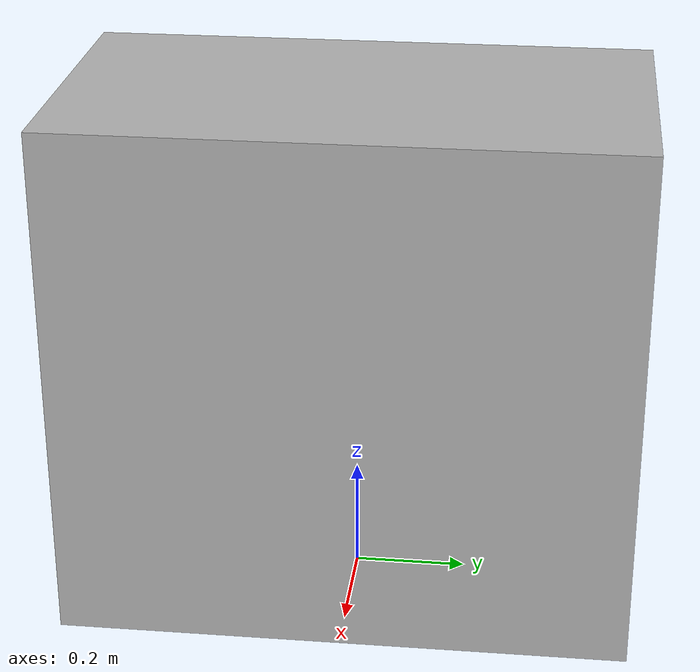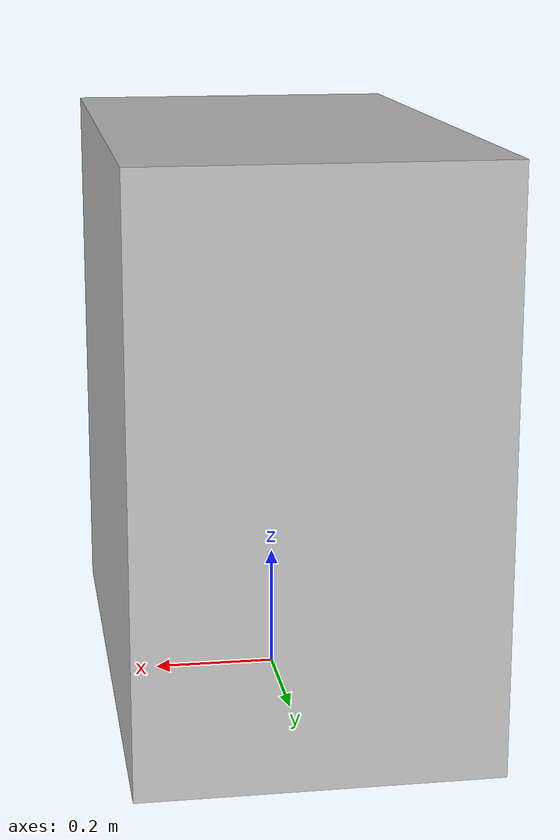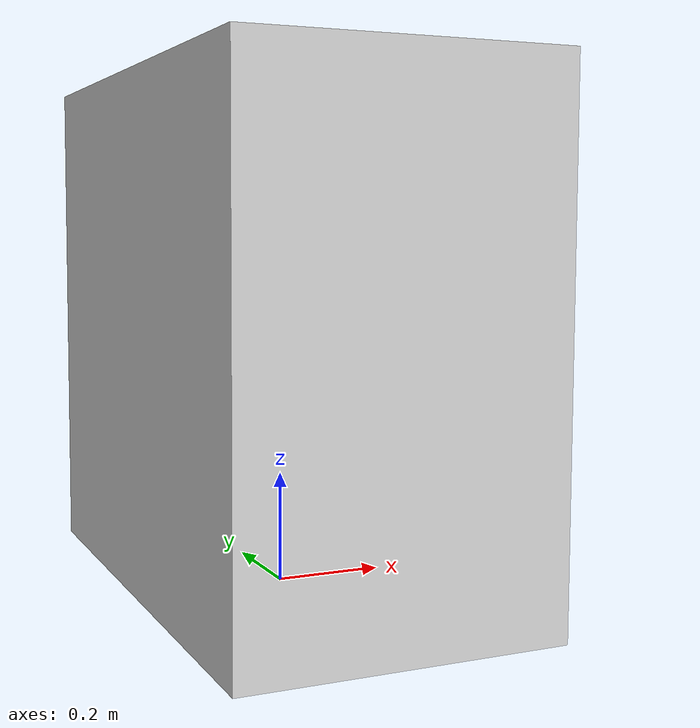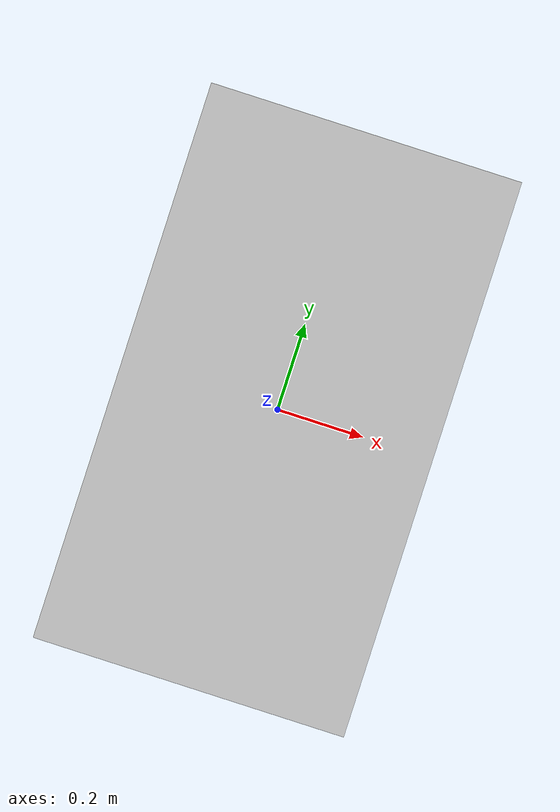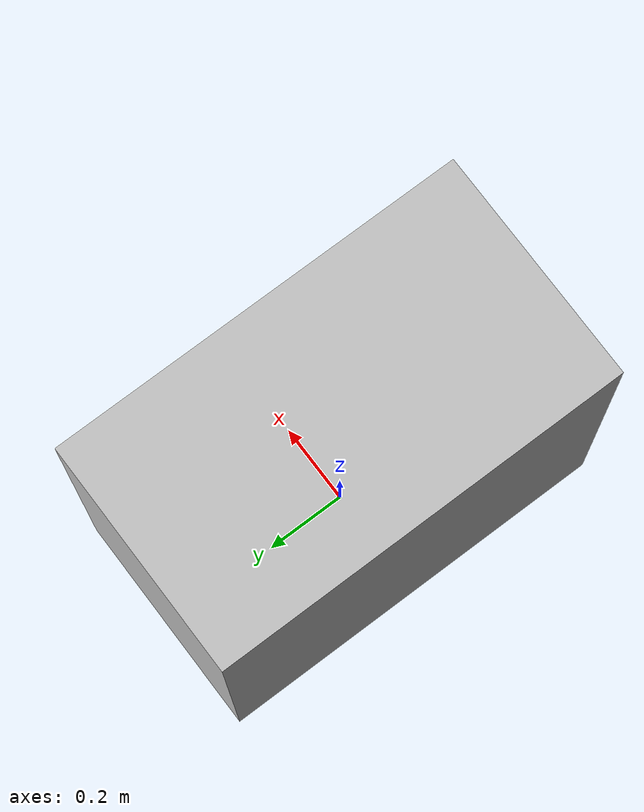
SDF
<?xml version="1.0"?>
<sdf version="1.6">
  <model name="rwc2016/kitchen_counter">
    <link name="1_link">
      <collision name="1_col">
        <geometry>
          <box>
            <size>0.56 1.0 0.924</size>
          </box>
        </geometry>
      </collision>
      <visual name="1_vis">
        <geometry>
          <box>
            <size>0.56 1.0 0.924</size>
          </box>
        </geometry>
        <material>
          <ambient>0.75 0.75 0.75 1</ambient>
        </material>
      </visual>
      <pose>0 0 0.462 0 0 0</pose>
    </link>
    <link name="on_top_of">
      <virtual_volume name="on_top_of_vv">
        <geometry>
          <box>
            <size>0.5 0.94 0.25</size>
          </box>
        </geometry>
        <pose>0.0 0.0 1.069 0 0 0</pose>
      </virtual_volume>
    </link>
    <link name="in_front_of">
      <virtual_volume name="in_front_of_vv">
        <geometry>
          <box>
            <size>0.2 0.8 0.01</size>
          </box>
        </geometry>
        <pose>0.78 0.0 0.005 0 0 0</pose>
      </virtual_volume>
    </link>
    <static>true</static>
  </model>
</sdf>
